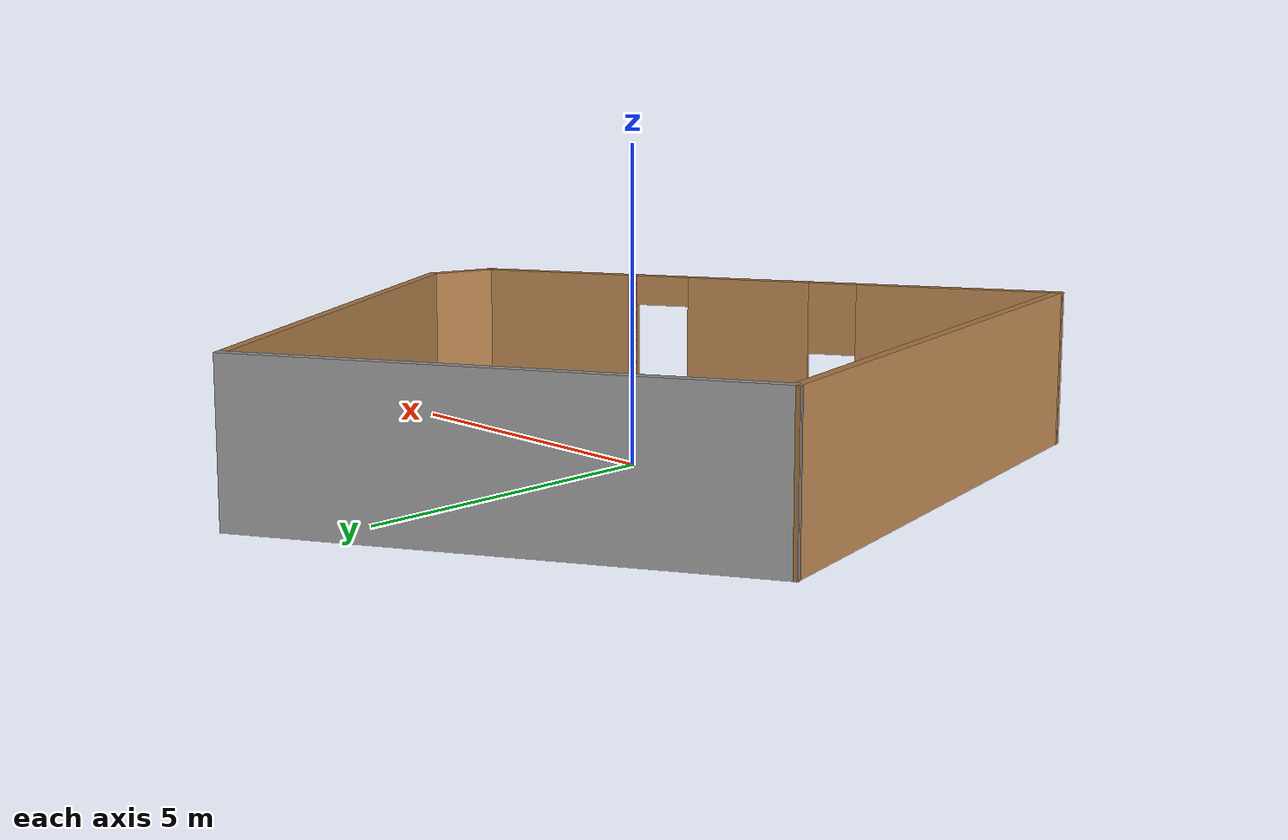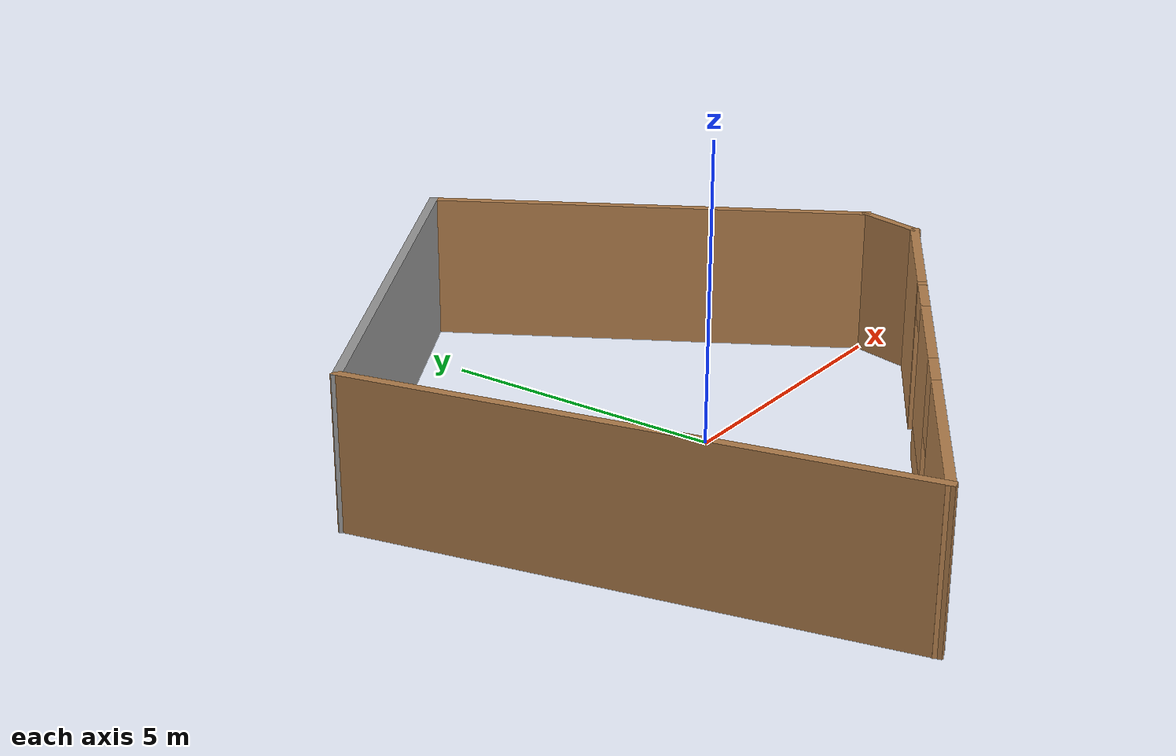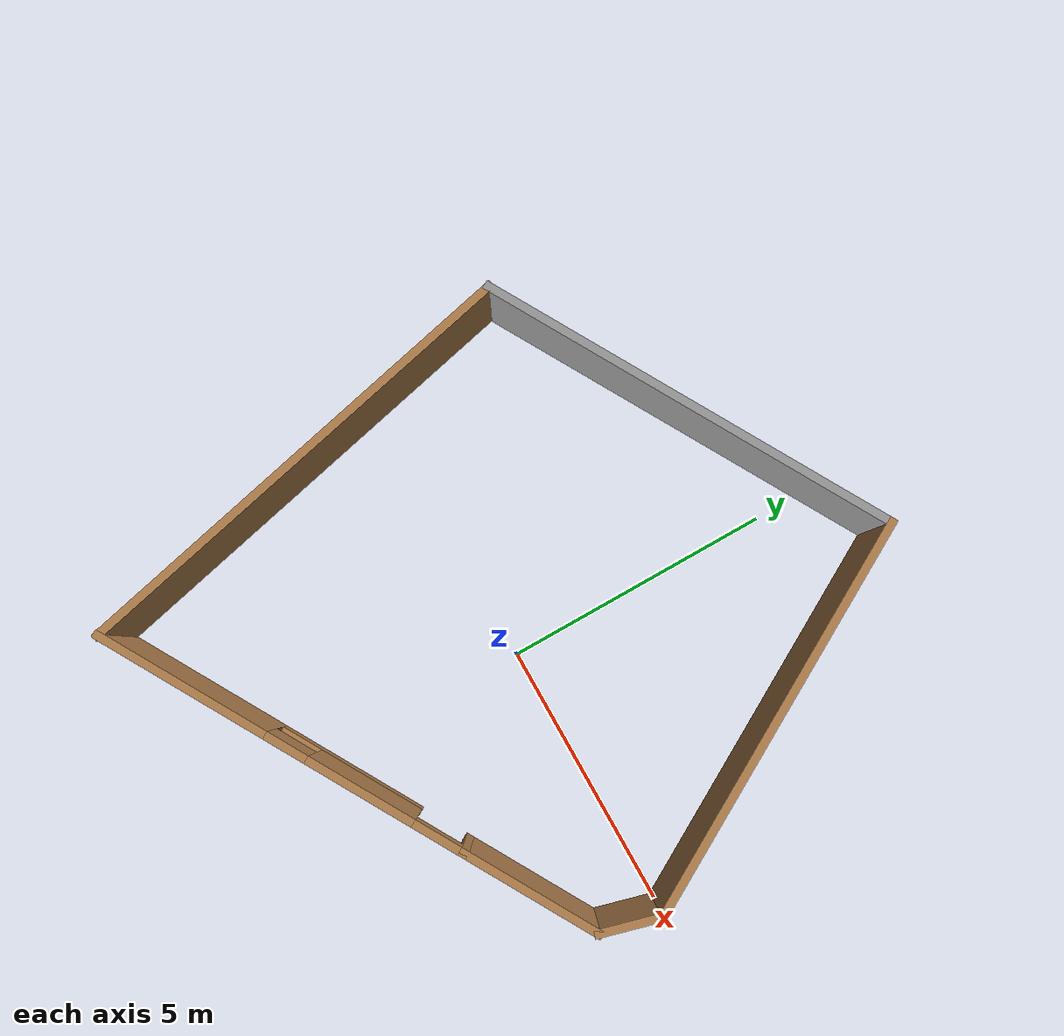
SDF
<?xml version='1.0'?>
<sdf version='1.7'>
  <model name='car1'>
    <pose>-0.314003 0.307156 0 0 -0 0</pose>
    <link name='Wall_0'>
      <pose>-0.311607 -4.47216 0 0 -0 0.523599</pose>
      <visual name='Wall_0_Visual_0'>
        <pose>-1.95867 0 1.25 0 -0 0</pose>
        <geometry>
          <box>
            <size>3.33266 0.15 2.5</size>
          </box>
        </geometry>
        <material>
          <script>
            <uri>file://media/materials/scripts/gazebo.material</uri>
            <name>Gazebo/Wood</name>
          </script>
          <ambient>1 1 1 1</ambient>
        </material>
        <meta>
          <layer>0</layer>
        </meta>
      </visual>
      <collision name='Wall_0_Collision_0'>
        <geometry>
          <box>
            <size>3.33266 0.15 2.5</size>
          </box>
        </geometry>
        <pose>-1.95867 0 1.25 0 -0 0</pose>
      </collision>
      <visual name='Wall_0_Visual_1'>
        <pose>3.55262 0 1.25 0 -0 0</pose>
        <geometry>
          <box>
            <size>0.144758 0.15 2.5</size>
          </box>
        </geometry>
        <material>
          <script>
            <uri>file://media/materials/scripts/gazebo.material</uri>
            <name>Gazebo/Wood</name>
          </script>
          <ambient>1 1 1 1</ambient>
        </material>
        <meta>
          <layer>0</layer>
        </meta>
      </visual>
      <collision name='Wall_0_Collision_1'>
        <geometry>
          <box>
            <size>0.144758 0.15 2.5</size>
          </box>
        </geometry>
        <pose>3.55262 0 1.25 0 -0 0</pose>
      </collision>
      <visual name='Wall_0_Visual_2'>
        <pose>1.14395 0 0.25 0 -0 0</pose>
        <geometry>
          <box>
            <size>2.87258 0.15 0.5</size>
          </box>
        </geometry>
        <material>
          <script>
            <uri>file://media/materials/scripts/gazebo.material</uri>
            <name>Gazebo/Wood</name>
          </script>
          <ambient>1 1 1 1</ambient>
        </material>
        <meta>
          <layer>0</layer>
        </meta>
      </visual>
      <collision name='Wall_0_Collision_2'>
        <geometry>
          <box>
            <size>2.87258 0.15 0.5</size>
          </box>
        </geometry>
        <pose>1.14395 0 0.25 0 -0 0</pose>
      </collision>
      <visual name='Wall_0_Visual_3'>
        <pose>1.54395 0 1.5 0 -0 0</pose>
        <geometry>
          <box>
            <size>2.07258 0.15 2</size>
          </box>
        </geometry>
        <material>
          <script>
            <uri>file://media/materials/scripts/gazebo.material</uri>
            <name>Gazebo/Wood</name>
          </script>
          <ambient>1 1 1 1</ambient>
        </material>
        <meta>
          <layer>0</layer>
        </meta>
      </visual>
      <collision name='Wall_0_Collision_3'>
        <geometry>
          <box>
            <size>2.07258 0.15 2</size>
          </box>
        </geometry>
        <pose>1.54395 0 1.5 0 -0 0</pose>
      </collision>
      <visual name='Wall_0_Visual_4'>
        <pose>0.107665 0 1.9 0 -0 0</pose>
        <geometry>
          <box>
            <size>0.8 0.15 1.2</size>
          </box>
        </geometry>
        <material>
          <script>
            <uri>file://media/materials/scripts/gazebo.material</uri>
            <name>Gazebo/Wood</name>
          </script>
          <ambient>1 1 1 1</ambient>
        </material>
        <meta>
          <layer>0</layer>
        </meta>
      </visual>
      <collision name='Wall_0_Collision_4'>
        <geometry>
          <box>
            <size>0.8 0.15 1.2</size>
          </box>
        </geometry>
        <pose>0.107665 0 1.9 0 -0 0</pose>
      </collision>
      <visual name='Wall_0_Visual_5'>
        <pose>3.03024 0 2.25 0 -0 0</pose>
        <geometry>
          <box>
            <size>0.9 0.15 0.5</size>
          </box>
        </geometry>
        <material>
          <script>
            <uri>file://media/materials/scripts/gazebo.material</uri>
            <name>Gazebo/Wood</name>
          </script>
          <ambient>1 1 1 1</ambient>
        </material>
        <meta>
          <layer>0</layer>
        </meta>
      </visual>
      <collision name='Wall_0_Collision_5'>
        <geometry>
          <box>
            <size>0.9 0.15 0.5</size>
          </box>
        </geometry>
        <pose>3.03024 0 2.25 0 -0 0</pose>
      </collision>
    </link>
    <link name='Wall_1'>
      <collision name='Wall_1_Collision'>
        <geometry>
          <box>
            <size>2.75 0.15 2.5</size>
          </box>
        </geometry>
        <pose>0 0 1.25 0 -0 0</pose>
      </collision>
      <visual name='Wall_1_Visual'>
        <pose>0 0 1.25 0 -0 0</pose>
        <geometry>
          <box>
            <size>2.75 0.15 2.5</size>
          </box>
        </geometry>
        <material>
          <script>
            <uri>file://media/materials/scripts/gazebo.material</uri>
            <name>Gazebo/Wood</name>
          </script>
          <ambient>1 1 1 1</ambient>
        </material>
        <meta>
          <layer>0</layer>
        </meta>
      </visual>
      <pose>3.88862 -2.04716 0 0 -0 0.523599</pose>
    </link>
    <link name='Wall_2'>
      <collision name='Wall_2_Collision'>
        <geometry>
          <box>
            <size>1.25 0.15 2.5</size>
          </box>
        </geometry>
        <pose>0 0 1.25 0 -0 0</pose>
      </collision>
      <visual name='Wall_2_Visual'>
        <pose>0 0 1.25 0 -0 0</pose>
        <geometry>
          <box>
            <size>1.25 0.15 2.5</size>
          </box>
        </geometry>
        <material>
          <script>
            <uri>file://media/materials/scripts/gazebo.material</uri>
            <name>Gazebo/Wood</name>
          </script>
          <ambient>1 1 1 1</ambient>
        </material>
        <meta>
          <layer>0</layer>
        </meta>
      </visual>
      <pose>5.1568 -0.865897 0 0 -0 1.309</pose>
    </link>
    <link name='Wall_3'>
      <collision name='Wall_3_Collision'>
        <geometry>
          <box>
            <size>7.75 0.15 2.5</size>
          </box>
        </geometry>
        <pose>0 0 1.25 0 -0 0</pose>
      </collision>
      <visual name='Wall_3_Visual'>
        <pose>0 0 1.25 0 -0 0</pose>
        <geometry>
          <box>
            <size>7.75 0.15 2.5</size>
          </box>
        </geometry>
        <material>
          <script>
            <uri>file://media/materials/scripts/gazebo.material</uri>
            <name>Gazebo/Wood</name>
          </script>
          <ambient>1 1 1 1</ambient>
        </material>
        <meta>
          <layer>0</layer>
        </meta>
      </visual>
      <pose>3.39915 2.95626 0 0 -0 2.0944</pose>
    </link>
    <link name='Wall_4'>
      <collision name='Wall_4_Collision'>
        <geometry>
          <box>
            <size>8 0.15 2.5</size>
          </box>
        </geometry>
        <pose>0 0 1.25 0 -0 0</pose>
      </collision>
      <visual name='Wall_4_Visual'>
        <pose>0 0 1.25 0 -0 0</pose>
        <geometry>
          <box>
            <size>8 0.15 2.5</size>
          </box>
        </geometry>
        <material>
          <script>
            <uri>file://media/materials/scripts/gazebo.material</uri>
            <name>Gazebo/Grey</name>
          </script>
          <ambient>1 1 1 1</ambient>
        </material>
        <meta>
          <layer>0</layer>
        </meta>
      </visual>
      <pose>-1.9 4.28466 0 0 -0 -2.61799</pose>
    </link>
    <link name='Wall_5'>
      <collision name='Wall_5_Collision'>
        <geometry>
          <box>
            <size>8.93028 0.15 2.5</size>
          </box>
        </geometry>
        <pose>0 0 1.25 0 -0 0</pose>
      </collision>
      <visual name='Wall_5_Visual'>
        <pose>0 0 1.25 0 -0 0</pose>
        <geometry>
          <box>
            <size>8.93028 0.15 2.5</size>
          </box>
        </geometry>
        <material>
          <script>
            <uri>file://media/materials/scripts/gazebo.material</uri>
            <name>Gazebo/Wood</name>
          </script>
          <ambient>1 1 1 1</ambient>
        </material>
        <meta>
          <layer>0</layer>
        </meta>
      </visual>
      <pose>-4.34257 -1.9625 0 0 -0 -1.35114</pose>
    </link>
    <static>1</static>
  </model>
</sdf>
